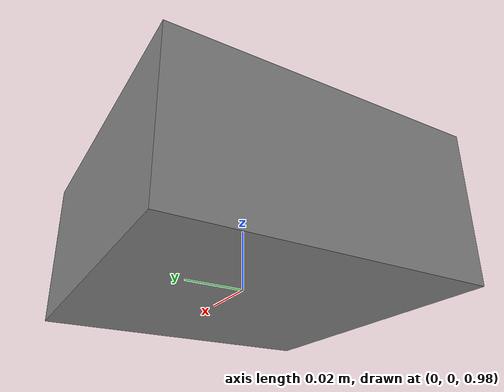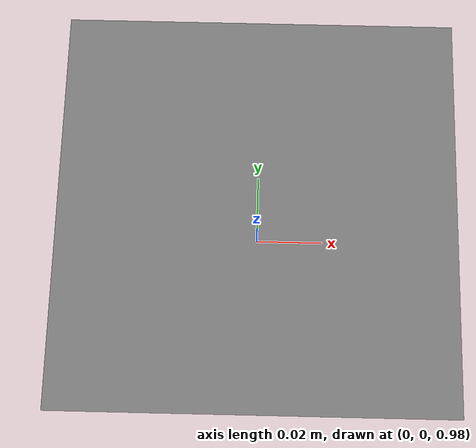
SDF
<?xml version="1.0"?>
<sdf version="1.6">
  <model name="camera_model">
    <pose>0 0 1 0 0 0</pose>
    <static>true</static>
    <link name="camera_link">
      <visual name="visual">
        <!-- Add your camera's visual properties, e.g., a box representing the camera -->
        <geometry>
          <box>
            <size>0.1 0.1 0.05</size>
          </box>
        </geometry>
        <material>
          <ambient>0.5 0.5 0.5 1</ambient>
          <diffuse>0.5 0.5 0.5 1</diffuse>
        </material>
      </visual>
      <sensor name="camera_sensor" type="camera">
        <camera>
          <image>
            <width>640</width>
            <height>480</height>
            <format>R8G8B8</format>
          </image>
          <clip>
            <near>0.1</near>
            <far>100</far>
          </clip>
          <noise>
            <!-- Add optional noise parameters -->
          </noise>
        </camera>
        <plugin name="camera_controller" filename="libgazebo_ros_camera.so">
          <!-- The camera plugin configuration goes here -->
          <alwaysOn>true</alwaysOn>
          <updateRate>30.0</updateRate>
          <cameraName>camera</cameraName>
          <imageTopicName>/camera_model/camera/image_topic</imageTopicName>
          <cameraInfoTopicName>camera_info_topic</cameraInfoTopicName>
          <frameName>camera_frame</frameName>
          <hackBaseline>0.07</hackBaseline>
          <distortionK1>0.0</distortionK1>
          <distortionK2>0.0</distortionK2>
          <distortionK3>0.0</distortionK3>
          <distortionT1>0.0</distortionT1>
          <distortionT2>0.0</distortionT2>
        </plugin>
      </sensor>
    </link>
  </model>
</sdf>
